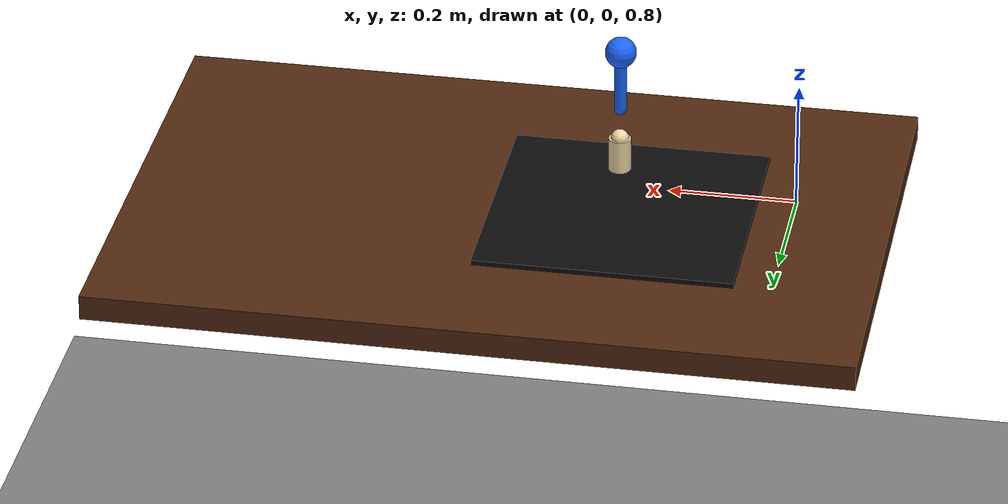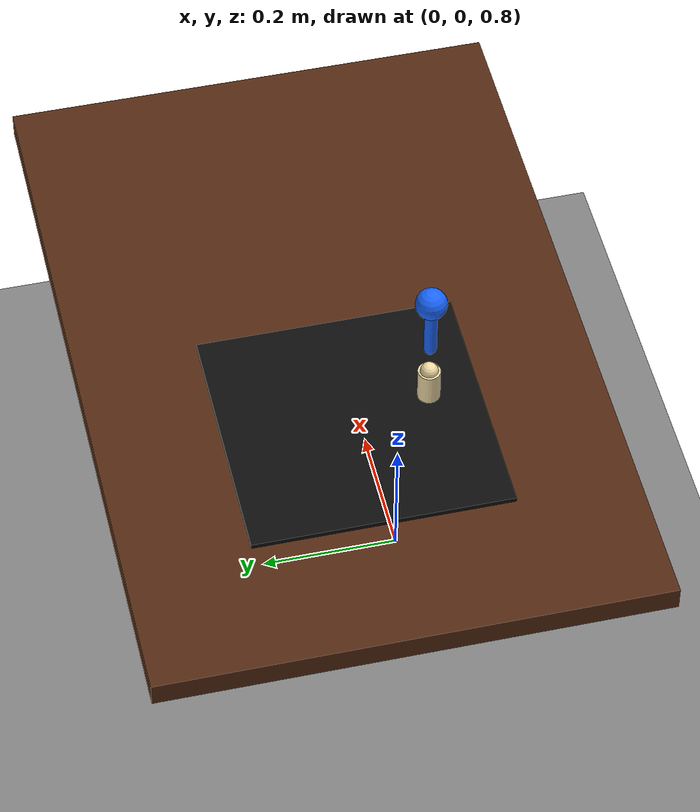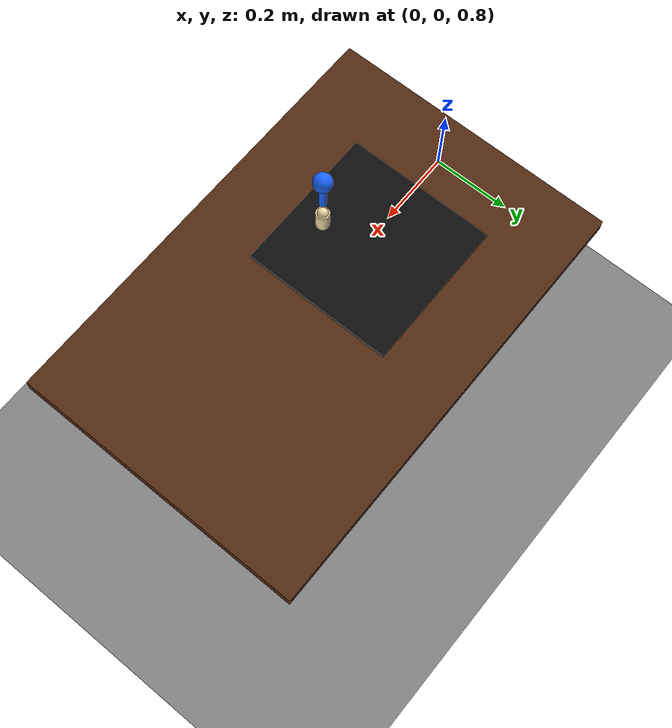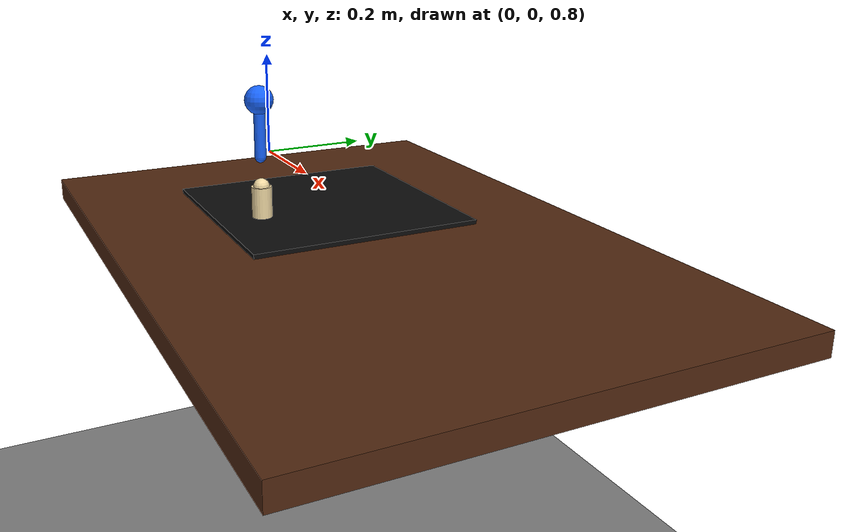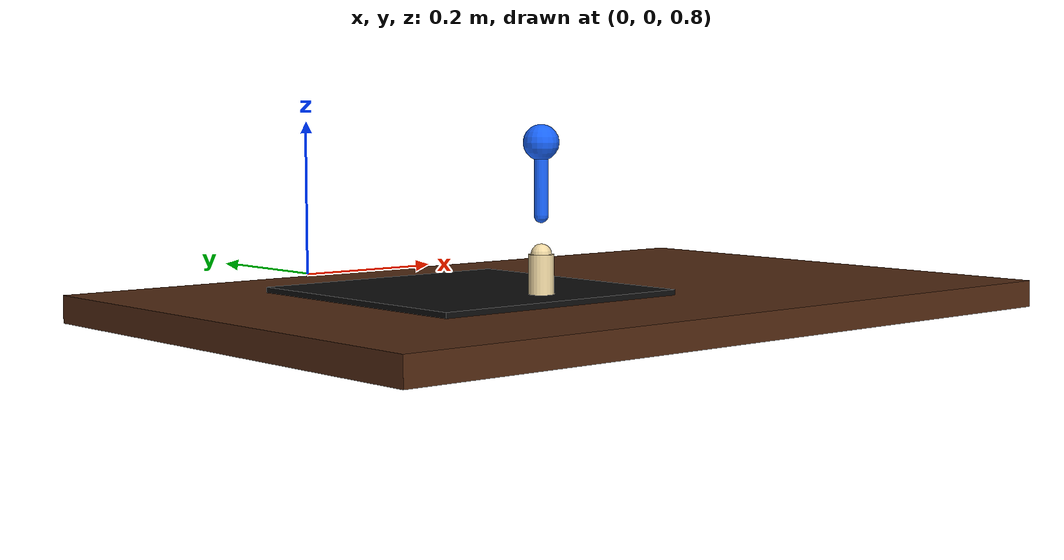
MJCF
<mujoco model="g1d_chess_scene">
  <compiler angle="radian" meshdir="../urdf/meshes"/>
  <option timestep="0.002" gravity="0 0 -9.81"/>

  <asset>
    <material name="table_mat" rgba="0.32 0.16 0.07 1"/>
    <material name="white_piece" rgba="0.95 0.86 0.65 1"/>
  </asset>

  <worldbody>
    <light pos="0 0 3"/>
    <geom name="floor" type="plane" size="5 5 0.1"/>

    <body name="table" pos="0.454 0 0.73">
      <geom type="box" size="0.6 0.4 0.02" material="table_mat"/>
    </body>

    <body name="board" pos="0.274 0 0.756">
      <geom name="board_base" type="box" pos="0 0 0.002" size="0.205 0.205 0.004" rgba="0.05 0.05 0.05 1"/>
    </body>

    <body name="piece_e2" pos="0.299 -0.125 0.7895">
      <joint name="piece_e2_free" type="free"/>
      <geom type="cylinder" size="0.018 0.0275" material="white_piece"/>
      <geom type="sphere" pos="0 0 0.0275" size="0.0144" material="white_piece"/>
    </body>

    <body name="gripper_marker" pos="0.299 -0.125 0.97">
      <joint name="gripper_marker_free" type="free"/>
      <geom type="sphere" size="0.025" rgba="0.1 0.4 1.0 1"/>
      <geom type="capsule" fromto="0 0 0 0 0 -0.10" size="0.01" rgba="0.1 0.4 1.0 1"/>
    </body>
  </worldbody>
</mujoco>
